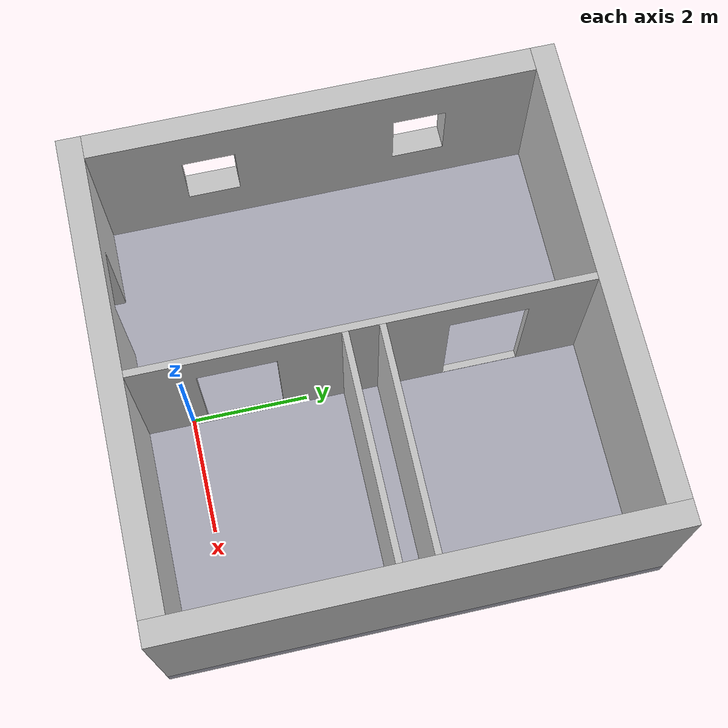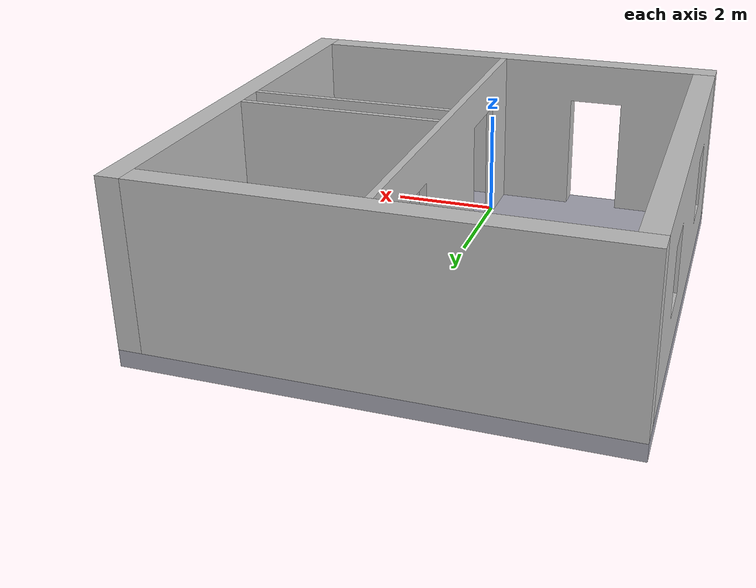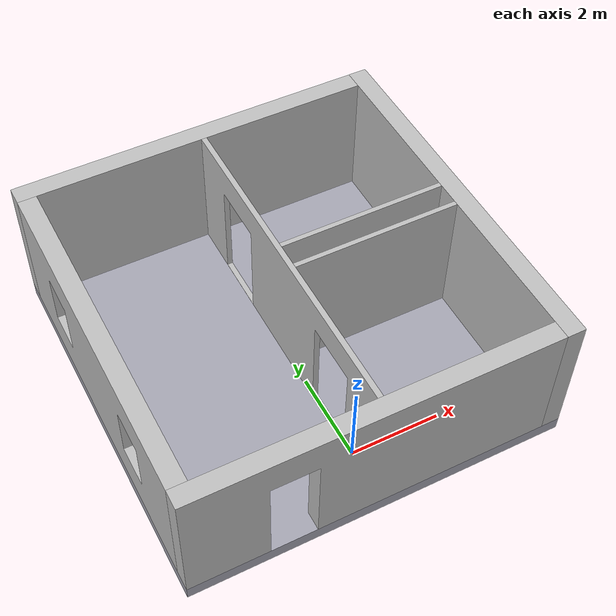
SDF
<?xml version="1.0"?>
<sdf version="1.6">
  <world name="ifc_world">
    <include>
      <uri>model://sun</uri>
    </include>
    <physics type="ode">
      <real_time_update_rate>1000.0</real_time_update_rate>
      <max_step_size>0.001</max_step_size>
      <real_time_factor>1</real_time_factor>
      <ode>
        <solver>
          <type>quick</type>
          <iters>150</iters>
          <precon_iters>0</precon_iters>
          <sor>1.4</sor>
          <use_dynamic_moi_rescaling>1</use_dynamic_moi_rescaling>
        </solver>
        <constraints>
          <cfm>0.00001</cfm>
          <erp>0.2</erp>
          <contact_max_correcting_vel>2000.0</contact_max_correcting_vel>
          <contact_surface_layer>0.01</contact_surface_layer>
        </constraints>
      </ode>
    </physics>
    <model name="IfcWall_3_Sc93izfEuuDAiaR0_6h3">
      <static>true</static>
      <pose>0 0 0 0 0 0</pose>
      <link name="link">
        <collision name="collision">
          <geometry>
            <mesh>
              <uri>src/robot_gazebo/models/worlds/meshes/IfcWall_3_Sc93izfEuuDAiaR0_6h3.obj</uri>
              <scale>1 1 1</scale>
            </mesh>
          </geometry>
        </collision>
        <visual name="visual">
          <geometry>
            <mesh>
              <uri>src/robot_gazebo/models/worlds/meshes/IfcWall_3_Sc93izfEuuDAiaR0_6h3.obj</uri>
              <scale>1 1 1</scale>
            </mesh>
          </geometry>
          <material>
            <ambient>0.70 0.70 0.70 1</ambient>
            <diffuse>0.75 0.75 0.75 1</diffuse>
          </material>
        </visual>
      </link>
    </model>
    <model name="IfcWall_3S3VgMDFLDiPHeIJPk5HIn">
      <static>true</static>
      <pose>0 0 0 0 0 0</pose>
      <link name="link">
        <collision name="collision">
          <geometry>
            <mesh>
              <uri>src/robot_gazebo/models/worlds/meshes/IfcWall_3S3VgMDFLDiPHeIJPk5HIn.obj</uri>
              <scale>1 1 1</scale>
            </mesh>
          </geometry>
        </collision>
        <visual name="visual">
          <geometry>
            <mesh>
              <uri>src/robot_gazebo/models/worlds/meshes/IfcWall_3S3VgMDFLDiPHeIJPk5HIn.obj</uri>
              <scale>1 1 1</scale>
            </mesh>
          </geometry>
          <material>
            <ambient>0.70 0.70 0.70 1</ambient>
            <diffuse>0.75 0.75 0.75 1</diffuse>
          </material>
        </visual>
      </link>
    </model>
    <model name="IfcWall_3S3VgMDFLDiPHeIJPk5HTj">
      <static>true</static>
      <pose>0 0 0 0 0 0</pose>
      <link name="link">
        <collision name="collision">
          <geometry>
            <mesh>
              <uri>src/robot_gazebo/models/worlds/meshes/IfcWall_3S3VgMDFLDiPHeIJPk5HTj.obj</uri>
              <scale>1 1 1</scale>
            </mesh>
          </geometry>
        </collision>
        <visual name="visual">
          <geometry>
            <mesh>
              <uri>src/robot_gazebo/models/worlds/meshes/IfcWall_3S3VgMDFLDiPHeIJPk5HTj.obj</uri>
              <scale>1 1 1</scale>
            </mesh>
          </geometry>
          <material>
            <ambient>0.70 0.70 0.70 1</ambient>
            <diffuse>0.75 0.75 0.75 1</diffuse>
          </material>
        </visual>
      </link>
    </model>
    <model name="IfcWall_3S3VgMDFLDiPHeIJPk5HSc">
      <static>true</static>
      <pose>0 0 0 0 0 0</pose>
      <link name="link">
        <collision name="collision">
          <geometry>
            <mesh>
              <uri>src/robot_gazebo/models/worlds/meshes/IfcWall_3S3VgMDFLDiPHeIJPk5HSc.obj</uri>
              <scale>1 1 1</scale>
            </mesh>
          </geometry>
        </collision>
        <visual name="visual">
          <geometry>
            <mesh>
              <uri>src/robot_gazebo/models/worlds/meshes/IfcWall_3S3VgMDFLDiPHeIJPk5HSc.obj</uri>
              <scale>1 1 1</scale>
            </mesh>
          </geometry>
          <material>
            <ambient>0.70 0.70 0.70 1</ambient>
            <diffuse>0.75 0.75 0.75 1</diffuse>
          </material>
        </visual>
      </link>
    </model>
    <model name="IfcWall_20rBv4HojAY8M3avWLHAgu">
      <static>true</static>
      <pose>0 0 0 0 0 0</pose>
      <link name="link">
        <collision name="collision">
          <geometry>
            <mesh>
              <uri>src/robot_gazebo/models/worlds/meshes/IfcWall_20rBv4HojAY8M3avWLHAgu.obj</uri>
              <scale>1 1 1</scale>
            </mesh>
          </geometry>
        </collision>
        <visual name="visual">
          <geometry>
            <mesh>
              <uri>src/robot_gazebo/models/worlds/meshes/IfcWall_20rBv4HojAY8M3avWLHAgu.obj</uri>
              <scale>1 1 1</scale>
            </mesh>
          </geometry>
          <material>
            <ambient>0.70 0.70 0.70 1</ambient>
            <diffuse>0.75 0.75 0.75 1</diffuse>
          </material>
        </visual>
      </link>
    </model>
    <model name="IfcWall_20rBv4HojAY8M3avWLHAad">
      <static>true</static>
      <pose>0 0 0 0 0 0</pose>
      <link name="link">
        <collision name="collision">
          <geometry>
            <mesh>
              <uri>src/robot_gazebo/models/worlds/meshes/IfcWall_20rBv4HojAY8M3avWLHAad.obj</uri>
              <scale>1 1 1</scale>
            </mesh>
          </geometry>
        </collision>
        <visual name="visual">
          <geometry>
            <mesh>
              <uri>src/robot_gazebo/models/worlds/meshes/IfcWall_20rBv4HojAY8M3avWLHAad.obj</uri>
              <scale>1 1 1</scale>
            </mesh>
          </geometry>
          <material>
            <ambient>0.70 0.70 0.70 1</ambient>
            <diffuse>0.75 0.75 0.75 1</diffuse>
          </material>
        </visual>
      </link>
    </model>
    <model name="IfcWall_1iDZV_Brn0Z9GW0EFhIoO4">
      <static>true</static>
      <pose>0 0 0 0 0 0</pose>
      <link name="link">
        <collision name="collision">
          <geometry>
            <mesh>
              <uri>src/robot_gazebo/models/worlds/meshes/IfcWall_1iDZV_Brn0Z9GW0EFhIoO4.obj</uri>
              <scale>1 1 1</scale>
            </mesh>
          </geometry>
        </collision>
        <visual name="visual">
          <geometry>
            <mesh>
              <uri>src/robot_gazebo/models/worlds/meshes/IfcWall_1iDZV_Brn0Z9GW0EFhIoO4.obj</uri>
              <scale>1 1 1</scale>
            </mesh>
          </geometry>
          <material>
            <ambient>0.70 0.70 0.70 1</ambient>
            <diffuse>0.75 0.75 0.75 1</diffuse>
          </material>
        </visual>
      </link>
    </model>
    <model name="IfcSlab_20rBv4HojAY8M3avWLHAN_">
      <static>true</static>
      <pose>0 0 0 0 0 0</pose>
      <link name="link">
        <collision name="collision">
          <geometry>
            <mesh>
              <uri>src/robot_gazebo/models/worlds/meshes/IfcSlab_20rBv4HojAY8M3avWLHAN_.obj</uri>
              <scale>1 1 1</scale>
            </mesh>
          </geometry>
        </collision>
        <visual name="visual">
          <geometry>
            <mesh>
              <uri>src/robot_gazebo/models/worlds/meshes/IfcSlab_20rBv4HojAY8M3avWLHAN_.obj</uri>
              <scale>1 1 1</scale>
            </mesh>
          </geometry>
          <material>
            <ambient>0.60 0.60 0.65 1</ambient>
            <diffuse>0.65 0.65 0.70 1</diffuse>
          </material>
        </visual>
      </link>
    </model>
  </world>
</sdf>
